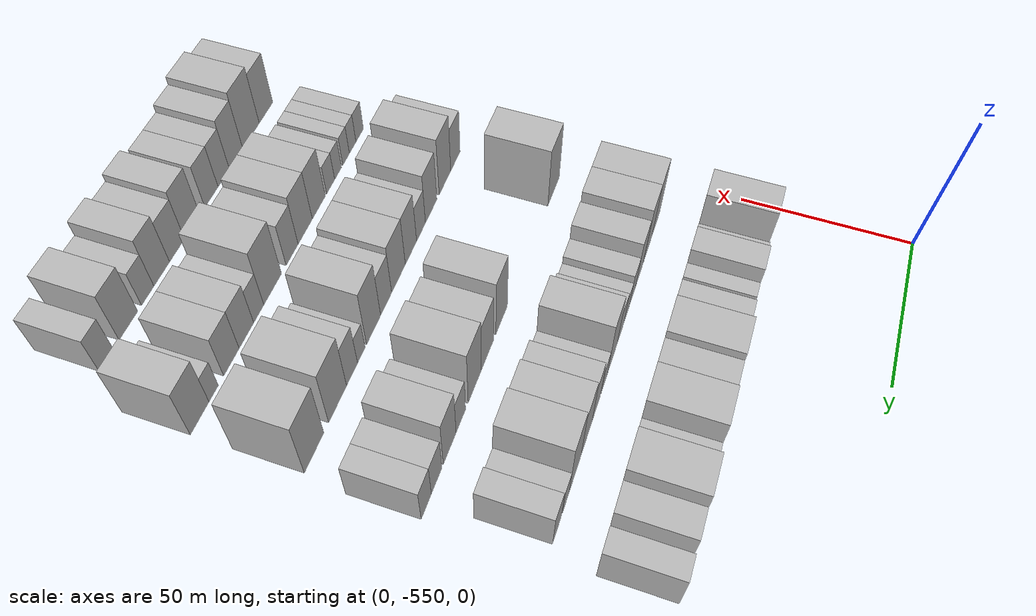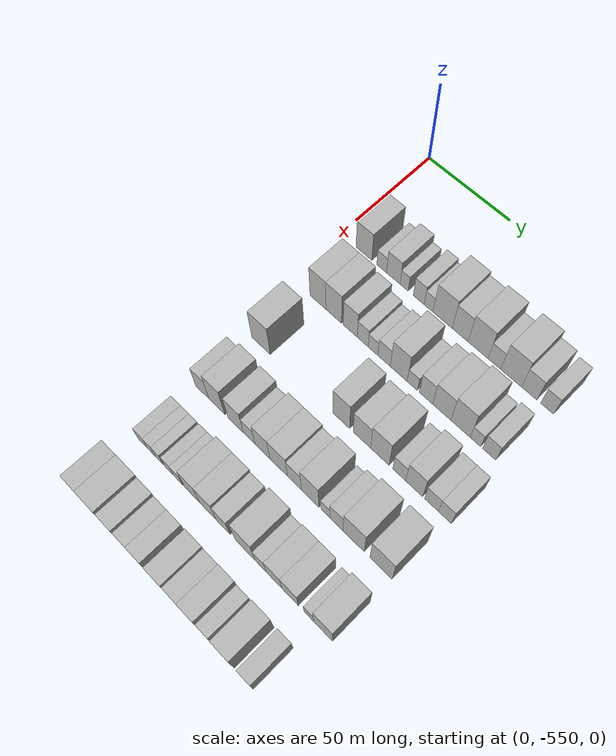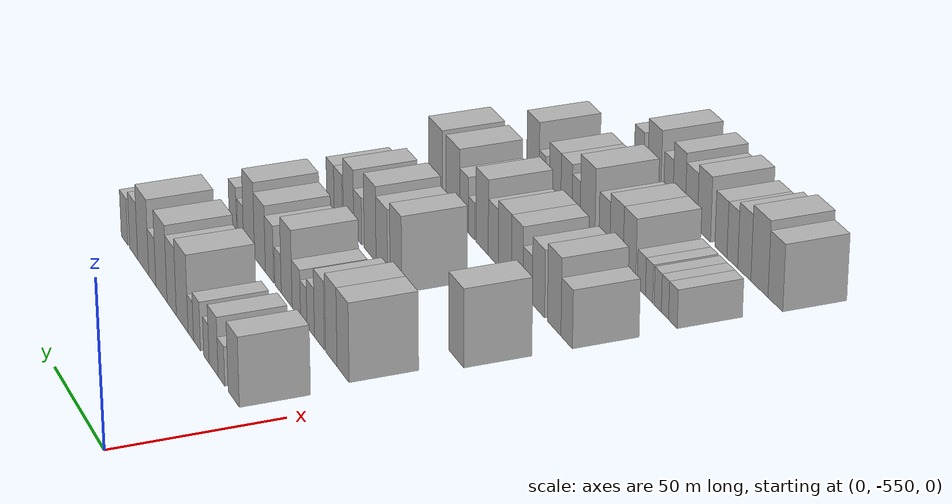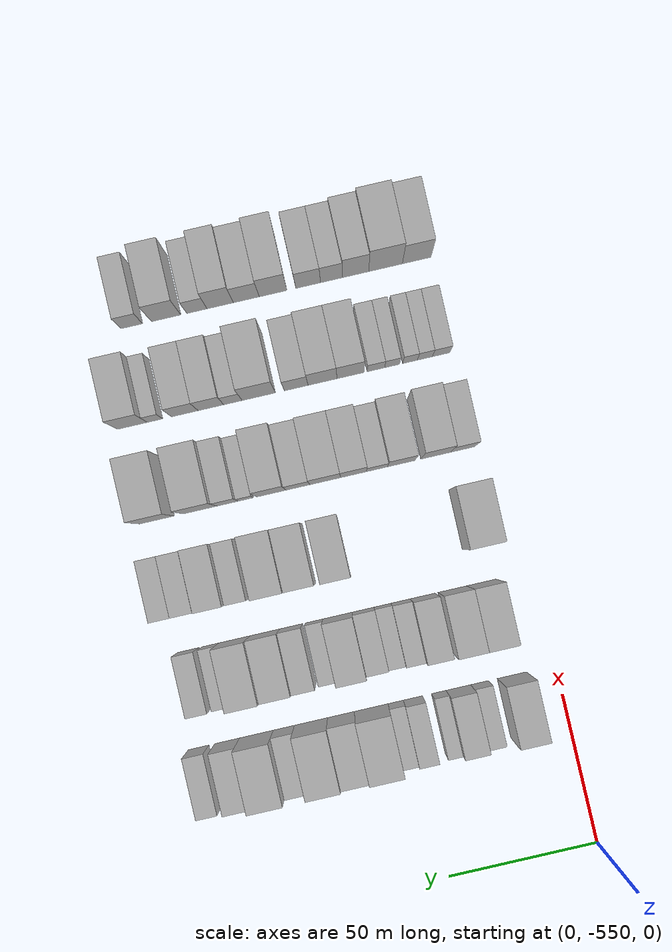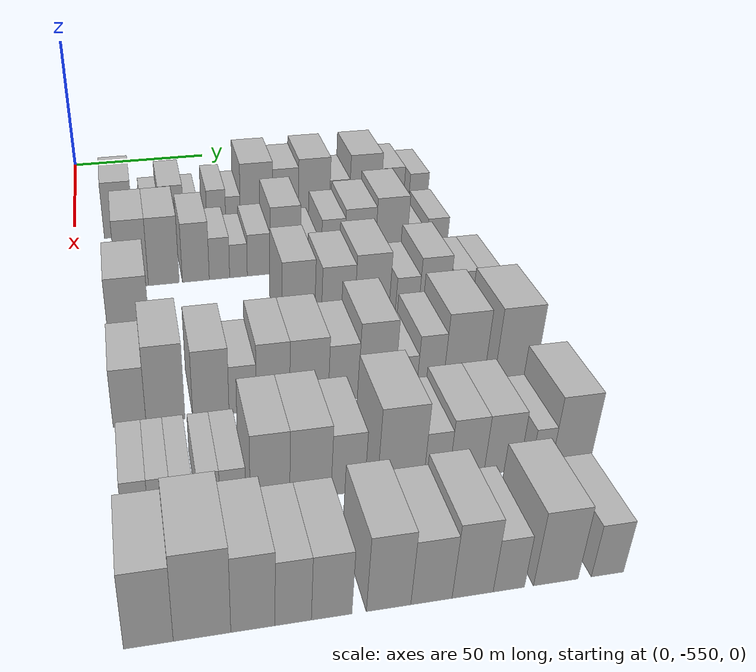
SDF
<sdf version="1.6">
 <world name="default">
  <model name="building_1">
   <static>1</static>
   <pose>50.0000 -535.0532 0 0.000000 0.000000 0.000000</pose>
   <link name="link">
    <pose>0 0 10.50 0 0 0</pose>
    <collision name="collision"><geometry><box><size>20.0000 9.8937 21.0000</size></box></geometry></collision>
    <visual name="visual">
     <cast_shadows>0</cast_shadows>
     <geometry><box><size>20.0000 9.8937 21.0000</size></box></geometry>
     <material>
      <script>
       <uri>model://HANNAS_wall/materials/scripts</uri>
       <uri>model://HANNAS_wall/materials/textures</uri>
       <name>vrc/HANNAS_wall</name>
      </script>
     </material>
    </visual>
   </link>
  </model>
  <model name="building_2">
   <static>1</static>
   <pose>50.0000 -524.1142 0 0.000000 0.000000 0.000000</pose>
   <link name="link">
    <pose>0 0 6.00 0 0 0</pose>
    <collision name="collision"><geometry><box><size>20.0000 5.9842 12.0000</size></box></geometry></collision>
    <visual name="visual">
     <cast_shadows>0</cast_shadows>
     <geometry><box><size>20.0000 5.9842 12.0000</size></box></geometry>
     <material>
      <script>
       <uri>model://HANNAS_wall/materials/scripts</uri>
       <uri>model://HANNAS_wall/materials/textures</uri>
       <name>vrc/HANNAS_wall</name>
      </script>
     </material>
    </visual>
   </link>
  </model>
  <model name="building_3">
   <static>1</static>
   <pose>50.0000 -516.9838 0 0.000000 0.000000 0.000000</pose>
   <link name="link">
    <pose>0 0 9.00 0 0 0</pose>
    <collision name="collision"><geometry><box><size>20.0000 8.2768 18.0000</size></box></geometry></collision>
    <visual name="visual">
     <cast_shadows>0</cast_shadows>
     <geometry><box><size>20.0000 8.2768 18.0000</size></box></geometry>
     <material>
      <script>
       <uri>model://HANNAS_wall/materials/scripts</uri>
       <uri>model://HANNAS_wall/materials/textures</uri>
       <name>vrc/HANNAS_wall</name>
      </script>
     </material>
    </visual>
   </link>
  </model>
  <model name="building_4">
   <static>1</static>
   <pose>50.0000 -510.3812 0 0.000000 0.000000 0.000000</pose>
   <link name="link">
    <pose>0 0 6.00 0 0 0</pose>
    <collision name="collision"><geometry><box><size>20.0000 4.9282 12.0000</size></box></geometry></collision>
    <visual name="visual">
     <cast_shadows>0</cast_shadows>
     <geometry><box><size>20.0000 4.9282 12.0000</size></box></geometry>
     <material>
      <script>
       <uri>model://HANNAS_wall/materials/scripts</uri>
       <uri>model://HANNAS_wall/materials/textures</uri>
       <name>vrc/HANNAS_wall</name>
      </script>
     </material>
    </visual>
   </link>
  </model>
  <model name="building_5">
   <static>1</static>
   <pose>50.0000 -501.6513 0 0.000000 0.000000 0.000000</pose>
   <link name="link">
    <pose>0 0 7.50 0 0 0</pose>
    <collision name="collision"><geometry><box><size>20.0000 6.5316 15.0000</size></box></geometry></collision>
    <visual name="visual">
     <cast_shadows>0</cast_shadows>
     <geometry><box><size>20.0000 6.5316 15.0000</size></box></geometry>
     <material>
      <script>
       <uri>model://HANNAS_wall/materials/scripts</uri>
       <uri>model://HANNAS_wall/materials/textures</uri>
       <name>vrc/HANNAS_wall</name>
      </script>
     </material>
    </visual>
   </link>
  </model>
  <model name="building_6">
   <static>1</static>
   <pose>50.0000 -495.8158 0 0.000000 0.000000 0.000000</pose>
   <link name="link">
    <pose>0 0 6.00 0 0 0</pose>
    <collision name="collision"><geometry><box><size>20.0000 5.1393 12.0000</size></box></geometry></collision>
    <visual name="visual">
     <cast_shadows>0</cast_shadows>
     <geometry><box><size>20.0000 5.1393 12.0000</size></box></geometry>
     <material>
      <script>
       <uri>model://HANNAS_wall/materials/scripts</uri>
       <uri>model://HANNAS_wall/materials/textures</uri>
       <name>vrc/HANNAS_wall</name>
      </script>
     </material>
    </visual>
   </link>
  </model>
  <model name="building_7">
   <static>1</static>
   <pose>50.0000 -487.5946 0 0.000000 0.000000 0.000000</pose>
   <link name="link">
    <pose>0 0 12.00 0 0 0</pose>
    <collision name="collision"><geometry><box><size>20.0000 11.3032 24.0000</size></box></geometry></collision>
    <visual name="visual">
     <cast_shadows>0</cast_shadows>
     <geometry><box><size>20.0000 11.3032 24.0000</size></box></geometry>
     <material>
      <script>
       <uri>model://HANNAS_wall/materials/scripts</uri>
       <uri>model://HANNAS_wall/materials/textures</uri>
       <name>vrc/HANNAS_wall</name>
      </script>
     </material>
    </visual>
   </link>
  </model>
  <model name="building_8">
   <static>1</static>
   <pose>50.0000 -477.3992 0 0.000000 0.000000 0.000000</pose>
   <link name="link">
    <pose>0 0 10.50 0 0 0</pose>
    <collision name="collision"><geometry><box><size>20.0000 9.0877 21.0000</size></box></geometry></collision>
    <visual name="visual">
     <cast_shadows>0</cast_shadows>
     <geometry><box><size>20.0000 9.0877 21.0000</size></box></geometry>
     <material>
      <script>
       <uri>model://HANNAS_wall/materials/scripts</uri>
       <uri>model://HANNAS_wall/materials/textures</uri>
       <name>vrc/HANNAS_wall</name>
      </script>
     </material>
    </visual>
   </link>
  </model>
  <model name="building_9">
   <static>1</static>
   <pose>50.0000 -467.2614 0 0.000000 0.000000 0.000000</pose>
   <link name="link">
    <pose>0 0 12.00 0 0 0</pose>
    <collision name="collision"><geometry><box><size>20.0000 11.1878 24.0000</size></box></geometry></collision>
    <visual name="visual">
     <cast_shadows>0</cast_shadows>
     <geometry><box><size>20.0000 11.1878 24.0000</size></box></geometry>
     <material>
      <script>
       <uri>model://HANNAS_wall/materials/scripts</uri>
       <uri>model://HANNAS_wall/materials/textures</uri>
       <name>vrc/HANNAS_wall</name>
      </script>
     </material>
    </visual>
   </link>
  </model>
  <model name="building_10">
   <static>1</static>
   <pose>50.0000 -458.1173 0 0.000000 0.000000 0.000000</pose>
   <link name="link">
    <pose>0 0 7.50 0 0 0</pose>
    <collision name="collision"><geometry><box><size>20.0000 7.1003 15.0000</size></box></geometry></collision>
    <visual name="visual">
     <cast_shadows>0</cast_shadows>
     <geometry><box><size>20.0000 7.1003 15.0000</size></box></geometry>
     <material>
      <script>
       <uri>model://HANNAS_wall/materials/scripts</uri>
       <uri>model://HANNAS_wall/materials/textures</uri>
       <name>vrc/HANNAS_wall</name>
      </script>
     </material>
    </visual>
   </link>
  </model>
  <model name="building_11">
   <static>1</static>
   <pose>50.0000 -448.8677 0 0.000000 0.000000 0.000000</pose>
   <link name="link">
    <pose>0 0 12.00 0 0 0</pose>
    <collision name="collision"><geometry><box><size>20.0000 11.3988 24.0000</size></box></geometry></collision>
    <visual name="visual">
     <cast_shadows>0</cast_shadows>
     <geometry><box><size>20.0000 11.3988 24.0000</size></box></geometry>
     <material>
      <script>
       <uri>model://HANNAS_wall/materials/scripts</uri>
       <uri>model://HANNAS_wall/materials/textures</uri>
       <name>vrc/HANNAS_wall</name>
      </script>
     </material>
    </visual>
   </link>
  </model>
  <model name="building_12">
   <static>1</static>
   <pose>50.0000 -438.9999 0 0.000000 0.000000 0.000000</pose>
   <link name="link">
    <pose>0 0 9.00 0 0 0</pose>
    <collision name="collision"><geometry><box><size>20.0000 8.3368 18.0000</size></box></geometry></collision>
    <visual name="visual">
     <cast_shadows>0</cast_shadows>
     <geometry><box><size>20.0000 8.3368 18.0000</size></box></geometry>
     <material>
      <script>
       <uri>model://HANNAS_wall/materials/scripts</uri>
       <uri>model://HANNAS_wall/materials/textures</uri>
       <name>vrc/HANNAS_wall</name>
      </script>
     </material>
    </visual>
   </link>
  </model>
  <model name="building_13">
   <static>1</static>
   <pose>50.0000 -429.3680 0 0.000000 0.000000 0.000000</pose>
   <link name="link">
    <pose>0 0 7.50 0 0 0</pose>
    <collision name="collision"><geometry><box><size>20.0000 6.9269 15.0000</size></box></geometry></collision>
    <visual name="visual">
     <cast_shadows>0</cast_shadows>
     <geometry><box><size>20.0000 6.9269 15.0000</size></box></geometry>
     <material>
      <script>
       <uri>model://HANNAS_wall/materials/scripts</uri>
       <uri>model://HANNAS_wall/materials/textures</uri>
       <name>vrc/HANNAS_wall</name>
      </script>
     </material>
    </visual>
   </link>
  </model>
  <model name="building_128">
   <static>1</static>
   <pose>82.0000 -532.0523 0 0.000000 0.000000 0.000000</pose>
   <link name="link">
    <pose>0 0 12.00 0 0 0</pose>
    <collision name="collision"><geometry><box><size>20.0000 9.8955 24.0000</size></box></geometry></collision>
    <visual name="visual">
     <cast_shadows>0</cast_shadows>
     <geometry><box><size>20.0000 9.8955 24.0000</size></box></geometry>
     <material>
      <script>
       <uri>model://HANNAS_wall/materials/scripts</uri>
       <uri>model://HANNAS_wall/materials/textures</uri>
       <name>vrc/HANNAS_wall</name>
      </script>
     </material>
    </visual>
   </link>
  </model>
  <model name="building_129">
   <static>1</static>
   <pose>82.0000 -522.2812 0 0.000000 0.000000 0.000000</pose>
   <link name="link">
    <pose>0 0 12.00 0 0 0</pose>
    <collision name="collision"><geometry><box><size>20.0000 9.6467 24.0000</size></box></geometry></collision>
    <visual name="visual">
     <cast_shadows>0</cast_shadows>
     <geometry><box><size>20.0000 9.6467 24.0000</size></box></geometry>
     <material>
      <script>
       <uri>model://HANNAS_wall/materials/scripts</uri>
       <uri>model://HANNAS_wall/materials/textures</uri>
       <name>vrc/HANNAS_wall</name>
      </script>
     </material>
    </visual>
   </link>
  </model>
  <model name="building_130">
   <static>1</static>
   <pose>82.0000 -512.2173 0 0.000000 0.000000 0.000000</pose>
   <link name="link">
    <pose>0 0 10.50 0 0 0</pose>
    <collision name="collision"><geometry><box><size>20.0000 8.4812 21.0000</size></box></geometry></collision>
    <visual name="visual">
     <cast_shadows>0</cast_shadows>
     <geometry><box><size>20.0000 8.4812 21.0000</size></box></geometry>
     <material>
      <script>
       <uri>model://HANNAS_wall/materials/scripts</uri>
       <uri>model://HANNAS_wall/materials/textures</uri>
       <name>vrc/HANNAS_wall</name>
      </script>
     </material>
    </visual>
   </link>
  </model>
  <model name="building_131">
   <static>1</static>
   <pose>82.0000 -504.7342 0 0.000000 0.000000 0.000000</pose>
   <link name="link">
    <pose>0 0 7.50 0 0 0</pose>
    <collision name="collision"><geometry><box><size>20.0000 6.4850 15.0000</size></box></geometry></collision>
    <visual name="visual">
     <cast_shadows>0</cast_shadows>
     <geometry><box><size>20.0000 6.4850 15.0000</size></box></geometry>
     <material>
      <script>
       <uri>model://HANNAS_wall/materials/scripts</uri>
       <uri>model://HANNAS_wall/materials/textures</uri>
       <name>vrc/HANNAS_wall</name>
      </script>
     </material>
    </visual>
   </link>
  </model>
  <model name="building_132">
   <static>1</static>
   <pose>82.0000 -498.6615 0 0.000000 0.000000 0.000000</pose>
   <link name="link">
    <pose>0 0 6.00 0 0 0</pose>
    <collision name="collision"><geometry><box><size>20.0000 5.6603 12.0000</size></box></geometry></collision>
    <visual name="visual">
     <cast_shadows>0</cast_shadows>
     <geometry><box><size>20.0000 5.6603 12.0000</size></box></geometry>
     <material>
      <script>
       <uri>model://HANNAS_wall/materials/scripts</uri>
       <uri>model://HANNAS_wall/materials/textures</uri>
       <name>vrc/HANNAS_wall</name>
      </script>
     </material>
    </visual>
   </link>
  </model>
  <model name="building_133">
   <static>1</static>
   <pose>82.0000 -492.1510 0 0.000000 0.000000 0.000000</pose>
   <link name="link">
    <pose>0 0 7.50 0 0 0</pose>
    <collision name="collision"><geometry><box><size>20.0000 7.3605 15.0000</size></box></geometry></collision>
    <visual name="visual">
     <cast_shadows>0</cast_shadows>
     <geometry><box><size>20.0000 7.3605 15.0000</size></box></geometry>
     <material>
      <script>
       <uri>model://HANNAS_wall/materials/scripts</uri>
       <uri>model://HANNAS_wall/materials/textures</uri>
       <name>vrc/HANNAS_wall</name>
      </script>
     </material>
    </visual>
   </link>
  </model>
  <model name="building_134">
   <static>1</static>
   <pose>82.0000 -483.6061 0 0.000000 0.000000 0.000000</pose>
   <link name="link">
    <pose>0 0 12.00 0 0 0</pose>
    <collision name="collision"><geometry><box><size>20.0000 9.7293 24.0000</size></box></geometry></collision>
    <visual name="visual">
     <cast_shadows>0</cast_shadows>
     <geometry><box><size>20.0000 9.7293 24.0000</size></box></geometry>
     <material>
      <script>
       <uri>model://HANNAS_wall/materials/scripts</uri>
       <uri>model://HANNAS_wall/materials/textures</uri>
       <name>vrc/HANNAS_wall</name>
      </script>
     </material>
    </visual>
   </link>
  </model>
  <model name="building_135">
   <static>1</static>
   <pose>82.0000 -475.8082 0 0.000000 0.000000 0.000000</pose>
   <link name="link">
    <pose>0 0 6.00 0 0 0</pose>
    <collision name="collision"><geometry><box><size>20.0000 5.8666 12.0000</size></box></geometry></collision>
    <visual name="visual">
     <cast_shadows>0</cast_shadows>
     <geometry><box><size>20.0000 5.8666 12.0000</size></box></geometry>
     <material>
      <script>
       <uri>model://HANNAS_wall/materials/scripts</uri>
       <uri>model://HANNAS_wall/materials/textures</uri>
       <name>vrc/HANNAS_wall</name>
      </script>
     </material>
    </visual>
   </link>
  </model>
  <model name="building_136">
   <static>1</static>
   <pose>82.0000 -468.0548 0 0.000000 0.000000 0.000000</pose>
   <link name="link">
    <pose>0 0 9.00 0 0 0</pose>
    <collision name="collision"><geometry><box><size>20.0000 7.6402 18.0000</size></box></geometry></collision>
    <visual name="visual">
     <cast_shadows>0</cast_shadows>
     <geometry><box><size>20.0000 7.6402 18.0000</size></box></geometry>
     <material>
      <script>
       <uri>model://HANNAS_wall/materials/scripts</uri>
       <uri>model://HANNAS_wall/materials/textures</uri>
       <name>vrc/HANNAS_wall</name>
      </script>
     </material>
    </visual>
   </link>
  </model>
  <model name="building_137">
   <static>1</static>
   <pose>82.0000 -459.1772 0 0.000000 0.000000 0.000000</pose>
   <link name="link">
    <pose>0 0 10.50 0 0 0</pose>
    <collision name="collision"><geometry><box><size>20.0000 10.1151 21.0000</size></box></geometry></collision>
    <visual name="visual">
     <cast_shadows>0</cast_shadows>
     <geometry><box><size>20.0000 10.1151 21.0000</size></box></geometry>
     <material>
      <script>
       <uri>model://HANNAS_wall/materials/scripts</uri>
       <uri>model://HANNAS_wall/materials/textures</uri>
       <name>vrc/HANNAS_wall</name>
      </script>
     </material>
    </visual>
   </link>
  </model>
  <model name="building_138">
   <static>1</static>
   <pose>82.0000 -448.8591 0 0.000000 0.000000 0.000000</pose>
   <link name="link">
    <pose>0 0 12.00 0 0 0</pose>
    <collision name="collision"><geometry><box><size>20.0000 10.5213 24.0000</size></box></geometry></collision>
    <visual name="visual">
     <cast_shadows>0</cast_shadows>
     <geometry><box><size>20.0000 10.5213 24.0000</size></box></geometry>
     <material>
      <script>
       <uri>model://HANNAS_wall/materials/scripts</uri>
       <uri>model://HANNAS_wall/materials/textures</uri>
       <name>vrc/HANNAS_wall</name>
      </script>
     </material>
    </visual>
   </link>
  </model>
  <model name="building_139">
   <static>1</static>
   <pose>82.0000 -440.7526 0 0.000000 0.000000 0.000000</pose>
   <link name="link">
    <pose>0 0 6.00 0 0 0</pose>
    <collision name="collision"><geometry><box><size>20.0000 5.6918 12.0000</size></box></geometry></collision>
    <visual name="visual">
     <cast_shadows>0</cast_shadows>
     <geometry><box><size>20.0000 5.6918 12.0000</size></box></geometry>
     <material>
      <script>
       <uri>model://HANNAS_wall/materials/scripts</uri>
       <uri>model://HANNAS_wall/materials/textures</uri>
       <name>vrc/HANNAS_wall</name>
      </script>
     </material>
    </visual>
   </link>
  </model>
  <model name="building_140">
   <static>1</static>
   <pose>82.0000 -433.3732 0 0.000000 0.000000 0.000000</pose>
   <link name="link">
    <pose>0 0 7.50 0 0 0</pose>
    <collision name="collision"><geometry><box><size>20.0000 7.0669 15.0000</size></box></geometry></collision>
    <visual name="visual">
     <cast_shadows>0</cast_shadows>
     <geometry><box><size>20.0000 7.0669 15.0000</size></box></geometry>
     <material>
      <script>
       <uri>model://HANNAS_wall/materials/scripts</uri>
       <uri>model://HANNAS_wall/materials/textures</uri>
       <name>vrc/HANNAS_wall</name>
      </script>
     </material>
    </visual>
   </link>
  </model>
  <model name="building_252">
   <static>1</static>
   <pose>114.0000 -534.2435 0 0.000000 0.000000 0.000000</pose>
   <link name="link">
    <pose>0 0 12.00 0 0 0</pose>
    <collision name="collision"><geometry><box><size>20.0000 11.5129 24.0000</size></box></geometry></collision>
    <visual name="visual">
     <cast_shadows>0</cast_shadows>
     <geometry><box><size>20.0000 11.5129 24.0000</size></box></geometry>
     <material>
      <script>
       <uri>model://HANNAS_wall/materials/scripts</uri>
       <uri>model://HANNAS_wall/materials/textures</uri>
       <name>vrc/HANNAS_wall</name>
      </script>
     </material>
    </visual>
   </link>
  </model>
  <model name="building_253">
   <static>1</static>
   <pose>114.0000 -485.9169 0 0.000000 0.000000 0.000000</pose>
   <link name="link">
    <pose>0 0 12.00 0 0 0</pose>
    <collision name="collision"><geometry><box><size>20.0000 9.7134 24.0000</size></box></geometry></collision>
    <visual name="visual">
     <cast_shadows>0</cast_shadows>
     <geometry><box><size>20.0000 9.7134 24.0000</size></box></geometry>
     <material>
      <script>
       <uri>model://HANNAS_wall/materials/scripts</uri>
       <uri>model://HANNAS_wall/materials/textures</uri>
       <name>vrc/HANNAS_wall</name>
      </script>
     </material>
    </visual>
   </link>
  </model>
  <model name="building_254">
   <static>1</static>
   <pose>114.0000 -474.1180 0 0.000000 0.000000 0.000000</pose>
   <link name="link">
    <pose>0 0 10.50 0 0 0</pose>
    <collision name="collision"><geometry><box><size>20.0000 9.8843 21.0000</size></box></geometry></collision>
    <visual name="visual">
     <cast_shadows>0</cast_shadows>
     <geometry><box><size>20.0000 9.8843 21.0000</size></box></geometry>
     <material>
      <script>
       <uri>model://HANNAS_wall/materials/scripts</uri>
       <uri>model://HANNAS_wall/materials/textures</uri>
       <name>vrc/HANNAS_wall</name>
      </script>
     </material>
    </visual>
   </link>
  </model>
  <model name="building_255">
   <static>1</static>
   <pose>114.0000 -464.0098 0 0.000000 0.000000 0.000000</pose>
   <link name="link">
    <pose>0 0 12.00 0 0 0</pose>
    <collision name="collision"><geometry><box><size>20.0000 10.3321 24.0000</size></box></geometry></collision>
    <visual name="visual">
     <cast_shadows>0</cast_shadows>
     <geometry><box><size>20.0000 10.3321 24.0000</size></box></geometry>
     <material>
      <script>
       <uri>model://HANNAS_wall/materials/scripts</uri>
       <uri>model://HANNAS_wall/materials/textures</uri>
       <name>vrc/HANNAS_wall</name>
      </script>
     </material>
    </visual>
   </link>
  </model>
  <model name="building_256">
   <static>1</static>
   <pose>114.0000 -453.3053 0 0.000000 0.000000 0.000000</pose>
   <link name="link">
    <pose>0 0 7.50 0 0 0</pose>
    <collision name="collision"><geometry><box><size>20.0000 7.0767 15.0000</size></box></geometry></collision>
    <visual name="visual">
     <cast_shadows>0</cast_shadows>
     <geometry><box><size>20.0000 7.0767 15.0000</size></box></geometry>
     <material>
      <script>
       <uri>model://HANNAS_wall/materials/scripts</uri>
       <uri>model://HANNAS_wall/materials/textures</uri>
       <name>vrc/HANNAS_wall</name>
      </script>
     </material>
    </visual>
   </link>
  </model>
  <model name="building_257">
   <static>1</static>
   <pose>114.0000 -445.1203 0 0.000000 0.000000 0.000000</pose>
   <link name="link">
    <pose>0 0 10.50 0 0 0</pose>
    <collision name="collision"><geometry><box><size>20.0000 9.2933 21.0000</size></box></geometry></collision>
    <visual name="visual">
     <cast_shadows>0</cast_shadows>
     <geometry><box><size>20.0000 9.2933 21.0000</size></box></geometry>
     <material>
      <script>
       <uri>model://HANNAS_wall/materials/scripts</uri>
       <uri>model://HANNAS_wall/materials/textures</uri>
       <name>vrc/HANNAS_wall</name>
      </script>
     </material>
    </visual>
   </link>
  </model>
  <model name="building_258">
   <static>1</static>
   <pose>114.0000 -435.8151 0 0.000000 0.000000 0.000000</pose>
   <link name="link">
    <pose>0 0 7.50 0 0 0</pose>
    <collision name="collision"><geometry><box><size>20.0000 7.3170 15.0000</size></box></geometry></collision>
    <visual name="visual">
     <cast_shadows>0</cast_shadows>
     <geometry><box><size>20.0000 7.3170 15.0000</size></box></geometry>
     <material>
      <script>
       <uri>model://HANNAS_wall/materials/scripts</uri>
       <uri>model://HANNAS_wall/materials/textures</uri>
       <name>vrc/HANNAS_wall</name>
      </script>
     </material>
    </visual>
   </link>
  </model>
  <model name="building_259">
   <static>1</static>
   <pose>114.0000 -428.7140 0 0.000000 0.000000 0.000000</pose>
   <link name="link">
    <pose>0 0 7.50 0 0 0</pose>
    <collision name="collision"><geometry><box><size>20.0000 6.8852 15.0000</size></box></geometry></collision>
    <visual name="visual">
     <cast_shadows>0</cast_shadows>
     <geometry><box><size>20.0000 6.8852 15.0000</size></box></geometry>
     <material>
      <script>
       <uri>model://HANNAS_wall/materials/scripts</uri>
       <uri>model://HANNAS_wall/materials/textures</uri>
       <name>vrc/HANNAS_wall</name>
      </script>
     </material>
    </visual>
   </link>
  </model>
  <model name="building_372">
   <static>1</static>
   <pose>146.0000 -535.8655 0 0.000000 0.000000 0.000000</pose>
   <link name="link">
    <pose>0 0 9.00 0 0 0</pose>
    <collision name="collision"><geometry><box><size>20.0000 8.2691 18.0000</size></box></geometry></collision>
    <visual name="visual">
     <cast_shadows>0</cast_shadows>
     <geometry><box><size>20.0000 8.2691 18.0000</size></box></geometry>
     <material>
      <script>
       <uri>model://HANNAS_wall/materials/scripts</uri>
       <uri>model://HANNAS_wall/materials/textures</uri>
       <name>vrc/HANNAS_wall</name>
      </script>
     </material>
    </visual>
   </link>
  </model>
  <model name="building_373">
   <static>1</static>
   <pose>146.0000 -526.7843 0 0.000000 0.000000 0.000000</pose>
   <link name="link">
    <pose>0 0 12.00 0 0 0</pose>
    <collision name="collision"><geometry><box><size>20.0000 9.8932 24.0000</size></box></geometry></collision>
    <visual name="visual">
     <cast_shadows>0</cast_shadows>
     <geometry><box><size>20.0000 9.8932 24.0000</size></box></geometry>
     <material>
      <script>
       <uri>model://HANNAS_wall/materials/scripts</uri>
       <uri>model://HANNAS_wall/materials/textures</uri>
       <name>vrc/HANNAS_wall</name>
      </script>
     </material>
    </visual>
   </link>
  </model>
  <model name="building_374">
   <static>1</static>
   <pose>146.0000 -515.1789 0 0.000000 0.000000 0.000000</pose>
   <link name="link">
    <pose>0 0 10.50 0 0 0</pose>
    <collision name="collision"><geometry><box><size>20.0000 9.3176 21.0000</size></box></geometry></collision>
    <visual name="visual">
     <cast_shadows>0</cast_shadows>
     <geometry><box><size>20.0000 9.3176 21.0000</size></box></geometry>
     <material>
      <script>
       <uri>model://HANNAS_wall/materials/scripts</uri>
       <uri>model://HANNAS_wall/materials/textures</uri>
       <name>vrc/HANNAS_wall</name>
      </script>
     </material>
    </visual>
   </link>
  </model>
  <model name="building_375">
   <static>1</static>
   <pose>146.0000 -506.9889 0 0.000000 0.000000 0.000000</pose>
   <link name="link">
    <pose>0 0 7.50 0 0 0</pose>
    <collision name="collision"><geometry><box><size>20.0000 7.0623 15.0000</size></box></geometry></collision>
    <visual name="visual">
     <cast_shadows>0</cast_shadows>
     <geometry><box><size>20.0000 7.0623 15.0000</size></box></geometry>
     <material>
      <script>
       <uri>model://HANNAS_wall/materials/scripts</uri>
       <uri>model://HANNAS_wall/materials/textures</uri>
       <name>vrc/HANNAS_wall</name>
      </script>
     </material>
    </visual>
   </link>
  </model>
  <model name="building_376">
   <static>1</static>
   <pose>146.0000 -499.0719 0 0.000000 0.000000 0.000000</pose>
   <link name="link">
    <pose>0 0 10.50 0 0 0</pose>
    <collision name="collision"><geometry><box><size>20.0000 8.7718 21.0000</size></box></geometry></collision>
    <visual name="visual">
     <cast_shadows>0</cast_shadows>
     <geometry><box><size>20.0000 8.7718 21.0000</size></box></geometry>
     <material>
      <script>
       <uri>model://HANNAS_wall/materials/scripts</uri>
       <uri>model://HANNAS_wall/materials/textures</uri>
       <name>vrc/HANNAS_wall</name>
      </script>
     </material>
    </visual>
   </link>
  </model>
  <model name="building_377">
   <static>1</static>
   <pose>146.0000 -489.5501 0 0.000000 0.000000 0.000000</pose>
   <link name="link">
    <pose>0 0 10.50 0 0 0</pose>
    <collision name="collision"><geometry><box><size>20.0000 10.2717 21.0000</size></box></geometry></collision>
    <visual name="visual">
     <cast_shadows>0</cast_shadows>
     <geometry><box><size>20.0000 10.2717 21.0000</size></box></geometry>
     <material>
      <script>
       <uri>model://HANNAS_wall/materials/scripts</uri>
       <uri>model://HANNAS_wall/materials/textures</uri>
       <name>vrc/HANNAS_wall</name>
      </script>
     </material>
    </visual>
   </link>
  </model>
  <model name="building_378">
   <static>1</static>
   <pose>146.0000 -480.4164 0 0.000000 0.000000 0.000000</pose>
   <link name="link">
    <pose>0 0 9.00 0 0 0</pose>
    <collision name="collision"><geometry><box><size>20.0000 7.9957 18.0000</size></box></geometry></collision>
    <visual name="visual">
     <cast_shadows>0</cast_shadows>
     <geometry><box><size>20.0000 7.9957 18.0000</size></box></geometry>
     <material>
      <script>
       <uri>model://HANNAS_wall/materials/scripts</uri>
       <uri>model://HANNAS_wall/materials/textures</uri>
       <name>vrc/HANNAS_wall</name>
      </script>
     </material>
    </visual>
   </link>
  </model>
  <model name="building_379">
   <static>1</static>
   <pose>146.0000 -471.4613 0 0.000000 0.000000 0.000000</pose>
   <link name="link">
    <pose>0 0 12.00 0 0 0</pose>
    <collision name="collision"><geometry><box><size>20.0000 9.9146 24.0000</size></box></geometry></collision>
    <visual name="visual">
     <cast_shadows>0</cast_shadows>
     <geometry><box><size>20.0000 9.9146 24.0000</size></box></geometry>
     <material>
      <script>
       <uri>model://HANNAS_wall/materials/scripts</uri>
       <uri>model://HANNAS_wall/materials/textures</uri>
       <name>vrc/HANNAS_wall</name>
      </script>
     </material>
    </visual>
   </link>
  </model>
  <model name="building_380">
   <static>1</static>
   <pose>146.0000 -462.9635 0 0.000000 0.000000 0.000000</pose>
   <link name="link">
    <pose>0 0 6.00 0 0 0</pose>
    <collision name="collision"><geometry><box><size>20.0000 5.0810 12.0000</size></box></geometry></collision>
    <visual name="visual">
     <cast_shadows>0</cast_shadows>
     <geometry><box><size>20.0000 5.0810 12.0000</size></box></geometry>
     <material>
      <script>
       <uri>model://HANNAS_wall/materials/scripts</uri>
       <uri>model://HANNAS_wall/materials/textures</uri>
       <name>vrc/HANNAS_wall</name>
      </script>
     </material>
    </visual>
   </link>
  </model>
  <model name="building_381">
   <static>1</static>
   <pose>146.0000 -456.7820 0 0.000000 0.000000 0.000000</pose>
   <link name="link">
    <pose>0 0 9.00 0 0 0</pose>
    <collision name="collision"><geometry><box><size>20.0000 7.2820 18.0000</size></box></geometry></collision>
    <visual name="visual">
     <cast_shadows>0</cast_shadows>
     <geometry><box><size>20.0000 7.2820 18.0000</size></box></geometry>
     <material>
      <script>
       <uri>model://HANNAS_wall/materials/scripts</uri>
       <uri>model://HANNAS_wall/materials/textures</uri>
       <name>vrc/HANNAS_wall</name>
      </script>
     </material>
    </visual>
   </link>
  </model>
  <model name="building_382">
   <static>1</static>
   <pose>146.0000 -447.4260 0 0.000000 0.000000 0.000000</pose>
   <link name="link">
    <pose>0 0 12.00 0 0 0</pose>
    <collision name="collision"><geometry><box><size>20.0000 11.4300 24.0000</size></box></geometry></collision>
    <visual name="visual">
     <cast_shadows>0</cast_shadows>
     <geometry><box><size>20.0000 11.4300 24.0000</size></box></geometry>
     <material>
      <script>
       <uri>model://HANNAS_wall/materials/scripts</uri>
       <uri>model://HANNAS_wall/materials/textures</uri>
       <name>vrc/HANNAS_wall</name>
      </script>
     </material>
    </visual>
   </link>
  </model>
  <model name="building_383">
   <static>1</static>
   <pose>146.0000 -432.8350 0 0.000000 0.000000 0.000000</pose>
   <link name="link">
    <pose>0 0 12.00 0 0 0</pose>
    <collision name="collision"><geometry><box><size>20.0000 11.7521 24.0000</size></box></geometry></collision>
    <visual name="visual">
     <cast_shadows>0</cast_shadows>
     <geometry><box><size>20.0000 11.7521 24.0000</size></box></geometry>
     <material>
      <script>
       <uri>model://HANNAS_wall/materials/scripts</uri>
       <uri>model://HANNAS_wall/materials/textures</uri>
       <name>vrc/HANNAS_wall</name>
      </script>
     </material>
    </visual>
   </link>
  </model>
  <model name="building_492">
   <static>1</static>
   <pose>178.0000 -536.0572 0 0.000000 0.000000 0.000000</pose>
   <link name="link">
    <pose>0 0 6.00 0 0 0</pose>
    <collision name="collision"><geometry><box><size>20.0000 5.8856 12.0000</size></box></geometry></collision>
    <visual name="visual">
     <cast_shadows>0</cast_shadows>
     <geometry><box><size>20.0000 5.8856 12.0000</size></box></geometry>
     <material>
      <script>
       <uri>model://HANNAS_wall/materials/scripts</uri>
       <uri>model://HANNAS_wall/materials/textures</uri>
       <name>vrc/HANNAS_wall</name>
      </script>
     </material>
    </visual>
   </link>
  </model>
  <model name="building_493">
   <static>1</static>
   <pose>178.0000 -530.5879 0 0.000000 0.000000 0.000000</pose>
   <link name="link">
    <pose>0 0 6.00 0 0 0</pose>
    <collision name="collision"><geometry><box><size>20.0000 5.0531 12.0000</size></box></geometry></collision>
    <visual name="visual">
     <cast_shadows>0</cast_shadows>
     <geometry><box><size>20.0000 5.0531 12.0000</size></box></geometry>
     <material>
      <script>
       <uri>model://HANNAS_wall/materials/scripts</uri>
       <uri>model://HANNAS_wall/materials/textures</uri>
       <name>vrc/HANNAS_wall</name>
      </script>
     </material>
    </visual>
   </link>
  </model>
  <model name="building_494">
   <static>1</static>
   <pose>178.0000 -525.5663 0 0.000000 0.000000 0.000000</pose>
   <link name="link">
    <pose>0 0 6.00 0 0 0</pose>
    <collision name="collision"><geometry><box><size>20.0000 4.9900 12.0000</size></box></geometry></collision>
    <visual name="visual">
     <cast_shadows>0</cast_shadows>
     <geometry><box><size>20.0000 4.9900 12.0000</size></box></geometry>
     <material>
      <script>
       <uri>model://HANNAS_wall/materials/scripts</uri>
       <uri>model://HANNAS_wall/materials/textures</uri>
       <name>vrc/HANNAS_wall</name>
      </script>
     </material>
    </visual>
   </link>
  </model>
  <model name="building_495">
   <static>1</static>
   <pose>178.0000 -519.5412 0 0.000000 0.000000 0.000000</pose>
   <link name="link">
    <pose>0 0 6.00 0 0 0</pose>
    <collision name="collision"><geometry><box><size>20.0000 5.0602 12.0000</size></box></geometry></collision>
    <visual name="visual">
     <cast_shadows>0</cast_shadows>
     <geometry><box><size>20.0000 5.0602 12.0000</size></box></geometry>
     <material>
      <script>
       <uri>model://HANNAS_wall/materials/scripts</uri>
       <uri>model://HANNAS_wall/materials/textures</uri>
       <name>vrc/HANNAS_wall</name>
      </script>
     </material>
    </visual>
   </link>
  </model>
  <model name="building_496">
   <static>1</static>
   <pose>178.0000 -514.0520 0 0.000000 0.000000 0.000000</pose>
   <link name="link">
    <pose>0 0 6.00 0 0 0</pose>
    <collision name="collision"><geometry><box><size>20.0000 5.9182 12.0000</size></box></geometry></collision>
    <visual name="visual">
     <cast_shadows>0</cast_shadows>
     <geometry><box><size>20.0000 5.9182 12.0000</size></box></geometry>
     <material>
      <script>
       <uri>model://HANNAS_wall/materials/scripts</uri>
       <uri>model://HANNAS_wall/materials/textures</uri>
       <name>vrc/HANNAS_wall</name>
      </script>
     </material>
    </visual>
   </link>
  </model>
  <model name="building_497">
   <static>1</static>
   <pose>178.0000 -505.5124 0 0.000000 0.000000 0.000000</pose>
   <link name="link">
    <pose>0 0 10.50 0 0 0</pose>
    <collision name="collision"><geometry><box><size>20.0000 9.1611 21.0000</size></box></geometry></collision>
    <visual name="visual">
     <cast_shadows>0</cast_shadows>
     <geometry><box><size>20.0000 9.1611 21.0000</size></box></geometry>
     <material>
      <script>
       <uri>model://HANNAS_wall/materials/scripts</uri>
       <uri>model://HANNAS_wall/materials/textures</uri>
       <name>vrc/HANNAS_wall</name>
      </script>
     </material>
    </visual>
   </link>
  </model>
  <model name="building_498">
   <static>1</static>
   <pose>178.0000 -496.0664 0 0.000000 0.000000 0.000000</pose>
   <link name="link">
    <pose>0 0 10.50 0 0 0</pose>
    <collision name="collision"><geometry><box><size>20.0000 9.7309 21.0000</size></box></geometry></collision>
    <visual name="visual">
     <cast_shadows>0</cast_shadows>
     <geometry><box><size>20.0000 9.7309 21.0000</size></box></geometry>
     <material>
      <script>
       <uri>model://HANNAS_wall/materials/scripts</uri>
       <uri>model://HANNAS_wall/materials/textures</uri>
       <name>vrc/HANNAS_wall</name>
      </script>
     </material>
    </visual>
   </link>
  </model>
  <model name="building_499">
   <static>1</static>
   <pose>178.0000 -487.1992 0 0.000000 0.000000 0.000000</pose>
   <link name="link">
    <pose>0 0 9.00 0 0 0</pose>
    <collision name="collision"><geometry><box><size>20.0000 8.0034 18.0000</size></box></geometry></collision>
    <visual name="visual">
     <cast_shadows>0</cast_shadows>
     <geometry><box><size>20.0000 8.0034 18.0000</size></box></geometry>
     <material>
      <script>
       <uri>model://HANNAS_wall/materials/scripts</uri>
       <uri>model://HANNAS_wall/materials/textures</uri>
       <name>vrc/HANNAS_wall</name>
      </script>
     </material>
    </visual>
   </link>
  </model>
  <model name="building_500">
   <static>1</static>
   <pose>178.0000 -474.5847 0 0.000000 0.000000 0.000000</pose>
   <link name="link">
    <pose>0 0 12.00 0 0 0</pose>
    <collision name="collision"><geometry><box><size>20.0000 11.2257 24.0000</size></box></geometry></collision>
    <visual name="visual">
     <cast_shadows>0</cast_shadows>
     <geometry><box><size>20.0000 11.2257 24.0000</size></box></geometry>
     <material>
      <script>
       <uri>model://HANNAS_wall/materials/scripts</uri>
       <uri>model://HANNAS_wall/materials/textures</uri>
       <name>vrc/HANNAS_wall</name>
      </script>
     </material>
    </visual>
   </link>
  </model>
  <model name="building_501">
   <static>1</static>
   <pose>178.0000 -465.8659 0 0.000000 0.000000 0.000000</pose>
   <link name="link">
    <pose>0 0 7.50 0 0 0</pose>
    <collision name="collision"><geometry><box><size>20.0000 6.2119 15.0000</size></box></geometry></collision>
    <visual name="visual">
     <cast_shadows>0</cast_shadows>
     <geometry><box><size>20.0000 6.2119 15.0000</size></box></geometry>
     <material>
      <script>
       <uri>model://HANNAS_wall/materials/scripts</uri>
       <uri>model://HANNAS_wall/materials/textures</uri>
       <name>vrc/HANNAS_wall</name>
      </script>
     </material>
    </visual>
   </link>
  </model>
  <model name="building_502">
   <static>1</static>
   <pose>178.0000 -458.4284 0 0.000000 0.000000 0.000000</pose>
   <link name="link">
    <pose>0 0 9.00 0 0 0</pose>
    <collision name="collision"><geometry><box><size>20.0000 8.6631 18.0000</size></box></geometry></collision>
    <visual name="visual">
     <cast_shadows>0</cast_shadows>
     <geometry><box><size>20.0000 8.6631 18.0000</size></box></geometry>
     <material>
      <script>
       <uri>model://HANNAS_wall/materials/scripts</uri>
       <uri>model://HANNAS_wall/materials/textures</uri>
       <name>vrc/HANNAS_wall</name>
      </script>
     </material>
    </visual>
   </link>
  </model>
  <model name="building_503">
   <static>1</static>
   <pose>178.0000 -449.6203 0 0.000000 0.000000 0.000000</pose>
   <link name="link">
    <pose>0 0 9.00 0 0 0</pose>
    <collision name="collision"><geometry><box><size>20.0000 8.9530 18.0000</size></box></geometry></collision>
    <visual name="visual">
     <cast_shadows>0</cast_shadows>
     <geometry><box><size>20.0000 8.9530 18.0000</size></box></geometry>
     <material>
      <script>
       <uri>model://HANNAS_wall/materials/scripts</uri>
       <uri>model://HANNAS_wall/materials/textures</uri>
       <name>vrc/HANNAS_wall</name>
      </script>
     </material>
    </visual>
   </link>
  </model>
  <model name="building_504">
   <static>1</static>
   <pose>178.0000 -439.5547 0 0.000000 0.000000 0.000000</pose>
   <link name="link">
    <pose>0 0 6.00 0 0 0</pose>
    <collision name="collision"><geometry><box><size>20.0000 5.1782 12.0000</size></box></geometry></collision>
    <visual name="visual">
     <cast_shadows>0</cast_shadows>
     <geometry><box><size>20.0000 5.1782 12.0000</size></box></geometry>
     <material>
      <script>
       <uri>model://HANNAS_wall/materials/scripts</uri>
       <uri>model://HANNAS_wall/materials/textures</uri>
       <name>vrc/HANNAS_wall</name>
      </script>
     </material>
    </visual>
   </link>
  </model>
  <model name="building_505">
   <static>1</static>
   <pose>178.0000 -431.9366 0 0.000000 0.000000 0.000000</pose>
   <link name="link">
    <pose>0 0 10.50 0 0 0</pose>
    <collision name="collision"><geometry><box><size>20.0000 10.0579 21.0000</size></box></geometry></collision>
    <visual name="visual">
     <cast_shadows>0</cast_shadows>
     <geometry><box><size>20.0000 10.0579 21.0000</size></box></geometry>
     <material>
      <script>
       <uri>model://HANNAS_wall/materials/scripts</uri>
       <uri>model://HANNAS_wall/materials/textures</uri>
       <name>vrc/HANNAS_wall</name>
      </script>
     </material>
    </visual>
   </link>
  </model>
  <model name="building_612">
   <static>1</static>
   <pose>210.0000 -535.1805 0 0.000000 0.000000 0.000000</pose>
   <link name="link">
    <pose>0 0 10.50 0 0 0</pose>
    <collision name="collision"><geometry><box><size>20.0000 9.6390 21.0000</size></box></geometry></collision>
    <visual name="visual">
     <cast_shadows>0</cast_shadows>
     <geometry><box><size>20.0000 9.6390 21.0000</size></box></geometry>
     <material>
      <script>
       <uri>model://HANNAS_wall/materials/scripts</uri>
       <uri>model://HANNAS_wall/materials/textures</uri>
       <name>vrc/HANNAS_wall</name>
      </script>
     </material>
    </visual>
   </link>
  </model>
  <model name="building_613">
   <static>1</static>
   <pose>210.0000 -524.6890 0 0.000000 0.000000 0.000000</pose>
   <link name="link">
    <pose>0 0 12.00 0 0 0</pose>
    <collision name="collision"><geometry><box><size>20.0000 11.3440 24.0000</size></box></geometry></collision>
    <visual name="visual">
     <cast_shadows>0</cast_shadows>
     <geometry><box><size>20.0000 11.3440 24.0000</size></box></geometry>
     <material>
      <script>
       <uri>model://HANNAS_wall/materials/scripts</uri>
       <uri>model://HANNAS_wall/materials/textures</uri>
       <name>vrc/HANNAS_wall</name>
      </script>
     </material>
    </visual>
   </link>
  </model>
  <model name="building_614">
   <static>1</static>
   <pose>210.0000 -514.5878 0 0.000000 0.000000 0.000000</pose>
   <link name="link">
    <pose>0 0 10.50 0 0 0</pose>
    <collision name="collision"><geometry><box><size>20.0000 8.8585 21.0000</size></box></geometry></collision>
    <visual name="visual">
     <cast_shadows>0</cast_shadows>
     <geometry><box><size>20.0000 8.8585 21.0000</size></box></geometry>
     <material>
      <script>
       <uri>model://HANNAS_wall/materials/scripts</uri>
       <uri>model://HANNAS_wall/materials/textures</uri>
       <name>vrc/HANNAS_wall</name>
      </script>
     </material>
    </visual>
   </link>
  </model>
  <model name="building_615">
   <static>1</static>
   <pose>210.0000 -506.4698 0 0.000000 0.000000 0.000000</pose>
   <link name="link">
    <pose>0 0 9.00 0 0 0</pose>
    <collision name="collision"><geometry><box><size>20.0000 7.3775 18.0000</size></box></geometry></collision>
    <visual name="visual">
     <cast_shadows>0</cast_shadows>
     <geometry><box><size>20.0000 7.3775 18.0000</size></box></geometry>
     <material>
      <script>
       <uri>model://HANNAS_wall/materials/scripts</uri>
       <uri>model://HANNAS_wall/materials/textures</uri>
       <name>vrc/HANNAS_wall</name>
      </script>
     </material>
    </visual>
   </link>
  </model>
  <model name="building_616">
   <static>1</static>
   <pose>210.0000 -498.6105 0 0.000000 0.000000 0.000000</pose>
   <link name="link">
    <pose>0 0 9.00 0 0 0</pose>
    <collision name="collision"><geometry><box><size>20.0000 8.3410 18.0000</size></box></geometry></collision>
    <visual name="visual">
     <cast_shadows>0</cast_shadows>
     <geometry><box><size>20.0000 8.3410 18.0000</size></box></geometry>
     <material>
      <script>
       <uri>model://HANNAS_wall/materials/scripts</uri>
       <uri>model://HANNAS_wall/materials/textures</uri>
       <name>vrc/HANNAS_wall</name>
      </script>
     </material>
    </visual>
   </link>
  </model>
  <model name="building_617">
   <static>1</static>
   <pose>210.0000 -486.7761 0 0.000000 0.000000 0.000000</pose>
   <link name="link">
    <pose>0 0 10.50 0 0 0</pose>
    <collision name="collision"><geometry><box><size>20.0000 9.3278 21.0000</size></box></geometry></collision>
    <visual name="visual">
     <cast_shadows>0</cast_shadows>
     <geometry><box><size>20.0000 9.3278 21.0000</size></box></geometry>
     <material>
      <script>
       <uri>model://HANNAS_wall/materials/scripts</uri>
       <uri>model://HANNAS_wall/materials/textures</uri>
       <name>vrc/HANNAS_wall</name>
      </script>
     </material>
    </visual>
   </link>
  </model>
  <model name="building_618">
   <static>1</static>
   <pose>210.0000 -477.7283 0 0.000000 0.000000 0.000000</pose>
   <link name="link">
    <pose>0 0 9.00 0 0 0</pose>
    <collision name="collision"><geometry><box><size>20.0000 8.7678 18.0000</size></box></geometry></collision>
    <visual name="visual">
     <cast_shadows>0</cast_shadows>
     <geometry><box><size>20.0000 8.7678 18.0000</size></box></geometry>
     <material>
      <script>
       <uri>model://HANNAS_wall/materials/scripts</uri>
       <uri>model://HANNAS_wall/materials/textures</uri>
       <name>vrc/HANNAS_wall</name>
      </script>
     </material>
    </visual>
   </link>
  </model>
  <model name="building_619">
   <static>1</static>
   <pose>210.0000 -468.9078 0 0.000000 0.000000 0.000000</pose>
   <link name="link">
    <pose>0 0 10.50 0 0 0</pose>
    <collision name="collision"><geometry><box><size>20.0000 8.8732 21.0000</size></box></geometry></collision>
    <visual name="visual">
     <cast_shadows>0</cast_shadows>
     <geometry><box><size>20.0000 8.8732 21.0000</size></box></geometry>
     <material>
      <script>
       <uri>model://HANNAS_wall/materials/scripts</uri>
       <uri>model://HANNAS_wall/materials/textures</uri>
       <name>vrc/HANNAS_wall</name>
      </script>
     </material>
    </visual>
   </link>
  </model>
  <model name="building_620">
   <static>1</static>
   <pose>210.0000 -461.0507 0 0.000000 0.000000 0.000000</pose>
   <link name="link">
    <pose>0 0 7.50 0 0 0</pose>
    <collision name="collision"><geometry><box><size>20.0000 6.8410 15.0000</size></box></geometry></collision>
    <visual name="visual">
     <cast_shadows>0</cast_shadows>
     <geometry><box><size>20.0000 6.8410 15.0000</size></box></geometry>
     <material>
      <script>
       <uri>model://HANNAS_wall/materials/scripts</uri>
       <uri>model://HANNAS_wall/materials/textures</uri>
       <name>vrc/HANNAS_wall</name>
      </script>
     </material>
    </visual>
   </link>
  </model>
  <model name="building_621">
   <static>1</static>
   <pose>210.0000 -450.6885 0 0.000000 0.000000 0.000000</pose>
   <link name="link">
    <pose>0 0 10.50 0 0 0</pose>
    <collision name="collision"><geometry><box><size>20.0000 9.8833 21.0000</size></box></geometry></collision>
    <visual name="visual">
     <cast_shadows>0</cast_shadows>
     <geometry><box><size>20.0000 9.8833 21.0000</size></box></geometry>
     <material>
      <script>
       <uri>model://HANNAS_wall/materials/scripts</uri>
       <uri>model://HANNAS_wall/materials/textures</uri>
       <name>vrc/HANNAS_wall</name>
      </script>
     </material>
    </visual>
   </link>
  </model>
  <model name="building_622">
   <static>1</static>
   <pose>210.0000 -439.1178 0 0.000000 0.000000 0.000000</pose>
   <link name="link">
    <pose>0 0 7.50 0 0 0</pose>
    <collision name="collision"><geometry><box><size>20.0000 7.2581 15.0000</size></box></geometry></collision>
    <visual name="visual">
     <cast_shadows>0</cast_shadows>
     <geometry><box><size>20.0000 7.2581 15.0000</size></box></geometry>
     <material>
      <script>
       <uri>model://HANNAS_wall/materials/scripts</uri>
       <uri>model://HANNAS_wall/materials/textures</uri>
       <name>vrc/HANNAS_wall</name>
      </script>
     </material>
    </visual>
   </link>
  </model>
 </world>
</sdf>
